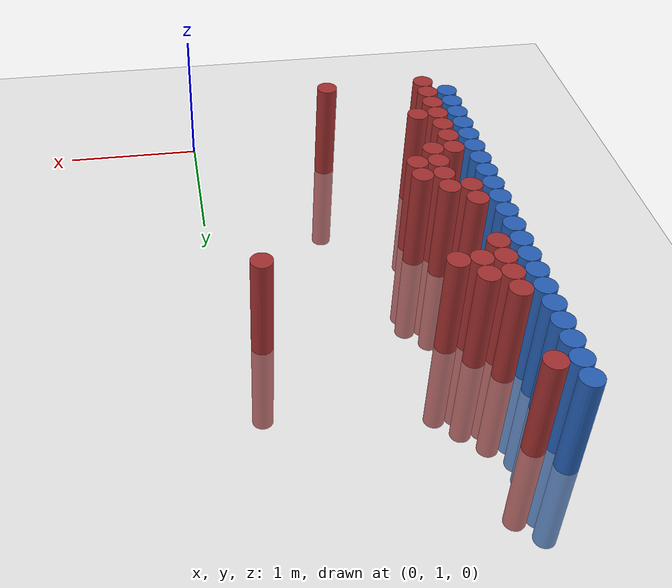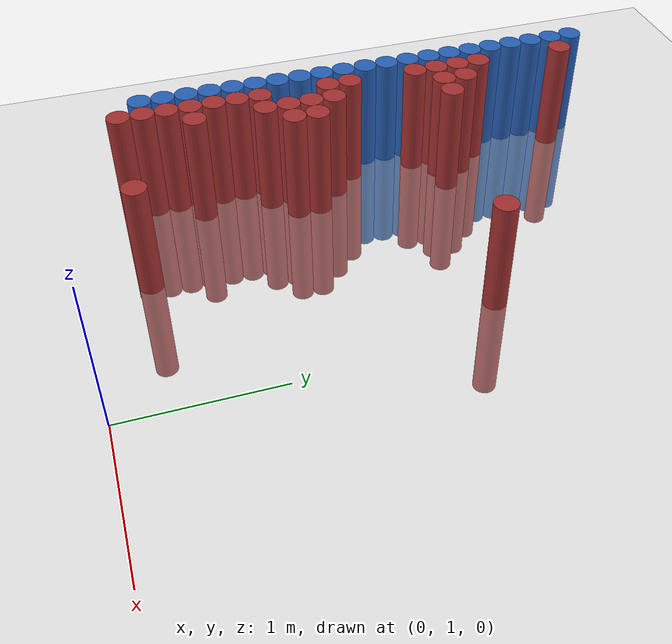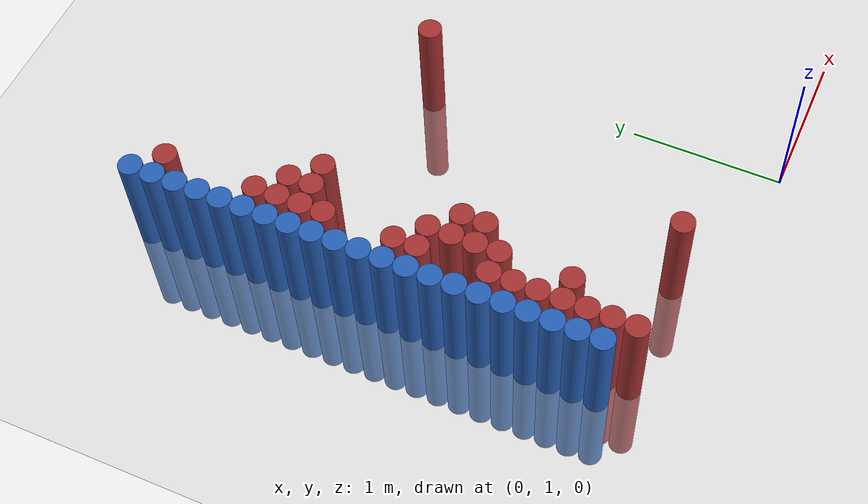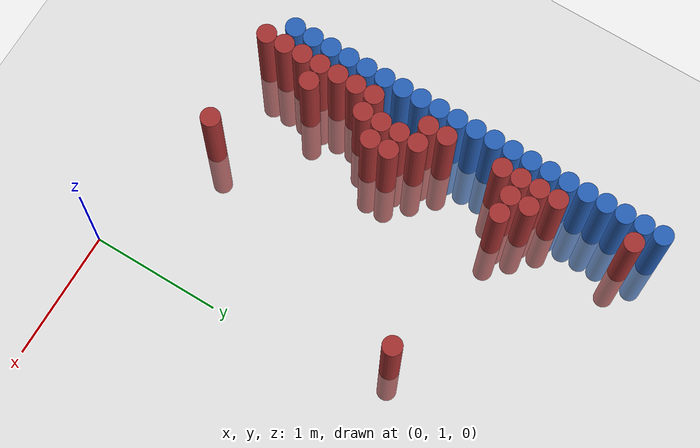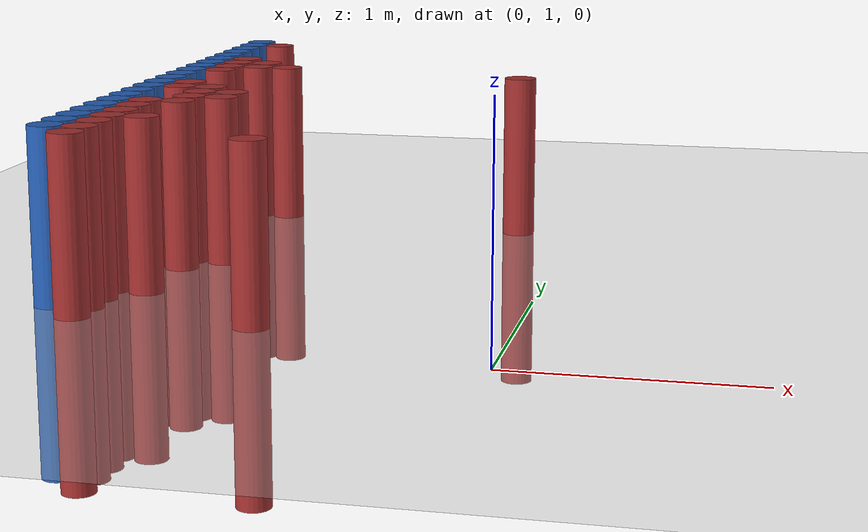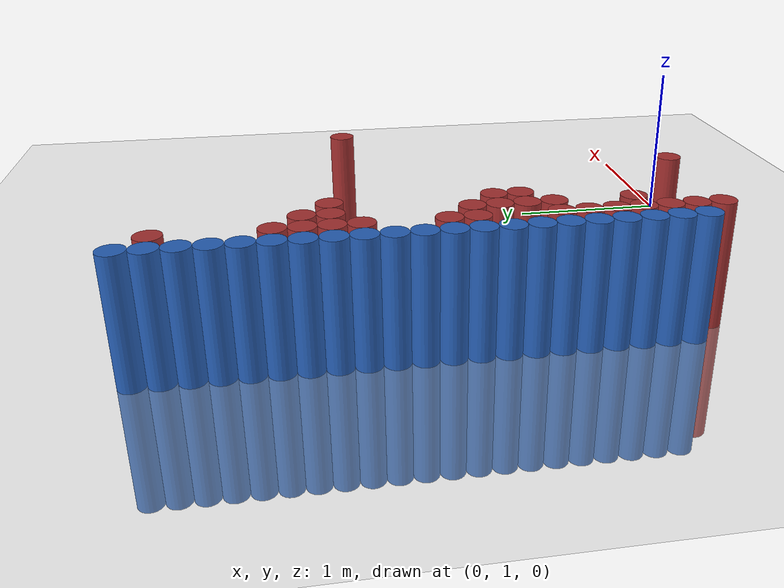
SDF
<sdf version="1.6">
 <world name="default">
  <model name="ground_plane">
   <static>1</static>
   <link name="link">
    <collision name="collision">
     <geometry><plane><normal>0 0 1</normal><size>100 100</size></plane></geometry>
     <surface><friction><ode><mu>100</mu><mu2>50</mu2></ode></friction></surface>
    </collision>
    <visual name="visual">
     <cast_shadows>0</cast_shadows>
     <geometry><plane><normal>0 0 1</normal><size>100 100</size></plane></geometry>
     <material>
      <script><uri>file://media/materials/scripts/gazebo.material</uri><name>Gazebo/Grey</name></script>
     </material>
    </visual>
   </link>
  </model>
  <model name="unit_cylinder_105">
   <static>1</static>
   <pose>-1.925000 1.525000 0.000000 0.000000 0.000000 0.000000</pose>
   <link name="link">
    <inertial>
     <mass>1</mass>
     <inertia><ixx>0.145833</ixx><ixy>0</ixy><ixz>0</ixz><iyy>0.145833</iyy><iyz>0</iyz><izz>0.125</izz></inertia>
    </inertial>
    <collision name="collision">
     <geometry><cylinder><radius>0.075000</radius><length>1.5</length></cylinder></geometry>
    </collision>
    <visual name="visual">
     <geometry><cylinder><radius>0.075000</radius><length>1.5</length></cylinder></geometry>
     <material>
      <ambient>0.152000 0.379000 0.720000 1</ambient>
      <diffuse>0.152000 0.379000 0.720000 1</diffuse>
     </material>
     <material>
      <script><name>Gazebo/Grey</name><uri>file://media/materials/scripts/gazebo.material</uri></script>
     </material>
    </visual>
   </link>
  </model>
  <model name="unit_cylinder_106">
   <static>1</static>
   <pose>-1.925000 1.675000 0.000000 0.000000 0.000000 0.000000</pose>
   <link name="link">
    <inertial>
     <mass>1</mass>
     <inertia><ixx>0.145833</ixx><ixy>0</ixy><ixz>0</ixz><iyy>0.145833</iyy><iyz>0</iyz><izz>0.125</izz></inertia>
    </inertial>
    <collision name="collision">
     <geometry><cylinder><radius>0.075000</radius><length>1.5</length></cylinder></geometry>
    </collision>
    <visual name="visual">
     <geometry><cylinder><radius>0.075000</radius><length>1.5</length></cylinder></geometry>
     <material>
      <ambient>0.152000 0.379000 0.720000 1</ambient>
      <diffuse>0.152000 0.379000 0.720000 1</diffuse>
     </material>
     <material>
      <script><name>Gazebo/Grey</name><uri>file://media/materials/scripts/gazebo.material</uri></script>
     </material>
    </visual>
   </link>
  </model>
  <model name="unit_cylinder_107">
   <static>1</static>
   <pose>-1.925000 1.825000 0.000000 0.000000 0.000000 0.000000</pose>
   <link name="link">
    <inertial>
     <mass>1</mass>
     <inertia><ixx>0.145833</ixx><ixy>0</ixy><ixz>0</ixz><iyy>0.145833</iyy><iyz>0</iyz><izz>0.125</izz></inertia>
    </inertial>
    <collision name="collision">
     <geometry><cylinder><radius>0.075000</radius><length>1.5</length></cylinder></geometry>
    </collision>
    <visual name="visual">
     <geometry><cylinder><radius>0.075000</radius><length>1.5</length></cylinder></geometry>
     <material>
      <ambient>0.152000 0.379000 0.720000 1</ambient>
      <diffuse>0.152000 0.379000 0.720000 1</diffuse>
     </material>
     <material>
      <script><name>Gazebo/Grey</name><uri>file://media/materials/scripts/gazebo.material</uri></script>
     </material>
    </visual>
   </link>
  </model>
  <model name="unit_cylinder_108">
   <static>1</static>
   <pose>-1.925000 1.975000 0.000000 0.000000 0.000000 0.000000</pose>
   <link name="link">
    <inertial>
     <mass>1</mass>
     <inertia><ixx>0.145833</ixx><ixy>0</ixy><ixz>0</ixz><iyy>0.145833</iyy><iyz>0</iyz><izz>0.125</izz></inertia>
    </inertial>
    <collision name="collision">
     <geometry><cylinder><radius>0.075000</radius><length>1.5</length></cylinder></geometry>
    </collision>
    <visual name="visual">
     <geometry><cylinder><radius>0.075000</radius><length>1.5</length></cylinder></geometry>
     <material>
      <ambient>0.152000 0.379000 0.720000 1</ambient>
      <diffuse>0.152000 0.379000 0.720000 1</diffuse>
     </material>
     <material>
      <script><name>Gazebo/Grey</name><uri>file://media/materials/scripts/gazebo.material</uri></script>
     </material>
    </visual>
   </link>
  </model>
  <model name="unit_cylinder_109">
   <static>1</static>
   <pose>-1.925000 2.125000 0.000000 0.000000 0.000000 0.000000</pose>
   <link name="link">
    <inertial>
     <mass>1</mass>
     <inertia><ixx>0.145833</ixx><ixy>0</ixy><ixz>0</ixz><iyy>0.145833</iyy><iyz>0</iyz><izz>0.125</izz></inertia>
    </inertial>
    <collision name="collision">
     <geometry><cylinder><radius>0.075000</radius><length>1.5</length></cylinder></geometry>
    </collision>
    <visual name="visual">
     <geometry><cylinder><radius>0.075000</radius><length>1.5</length></cylinder></geometry>
     <material>
      <ambient>0.152000 0.379000 0.720000 1</ambient>
      <diffuse>0.152000 0.379000 0.720000 1</diffuse>
     </material>
     <material>
      <script><name>Gazebo/Grey</name><uri>file://media/materials/scripts/gazebo.material</uri></script>
     </material>
    </visual>
   </link>
  </model>
  <model name="unit_cylinder_110">
   <static>1</static>
   <pose>-1.925000 2.275000 0.000000 0.000000 0.000000 0.000000</pose>
   <link name="link">
    <inertial>
     <mass>1</mass>
     <inertia><ixx>0.145833</ixx><ixy>0</ixy><ixz>0</ixz><iyy>0.145833</iyy><iyz>0</iyz><izz>0.125</izz></inertia>
    </inertial>
    <collision name="collision">
     <geometry><cylinder><radius>0.075000</radius><length>1.5</length></cylinder></geometry>
    </collision>
    <visual name="visual">
     <geometry><cylinder><radius>0.075000</radius><length>1.5</length></cylinder></geometry>
     <material>
      <ambient>0.152000 0.379000 0.720000 1</ambient>
      <diffuse>0.152000 0.379000 0.720000 1</diffuse>
     </material>
     <material>
      <script><name>Gazebo/Grey</name><uri>file://media/materials/scripts/gazebo.material</uri></script>
     </material>
    </visual>
   </link>
  </model>
  <model name="unit_cylinder_111">
   <static>1</static>
   <pose>-1.925000 2.425000 0.000000 0.000000 0.000000 0.000000</pose>
   <link name="link">
    <inertial>
     <mass>1</mass>
     <inertia><ixx>0.145833</ixx><ixy>0</ixy><ixz>0</ixz><iyy>0.145833</iyy><iyz>0</iyz><izz>0.125</izz></inertia>
    </inertial>
    <collision name="collision">
     <geometry><cylinder><radius>0.075000</radius><length>1.5</length></cylinder></geometry>
    </collision>
    <visual name="visual">
     <geometry><cylinder><radius>0.075000</radius><length>1.5</length></cylinder></geometry>
     <material>
      <ambient>0.152000 0.379000 0.720000 1</ambient>
      <diffuse>0.152000 0.379000 0.720000 1</diffuse>
     </material>
     <material>
      <script><name>Gazebo/Grey</name><uri>file://media/materials/scripts/gazebo.material</uri></script>
     </material>
    </visual>
   </link>
  </model>
  <model name="unit_cylinder_112">
   <static>1</static>
   <pose>-1.925000 2.575000 0.000000 0.000000 0.000000 0.000000</pose>
   <link name="link">
    <inertial>
     <mass>1</mass>
     <inertia><ixx>0.145833</ixx><ixy>0</ixy><ixz>0</ixz><iyy>0.145833</iyy><iyz>0</iyz><izz>0.125</izz></inertia>
    </inertial>
    <collision name="collision">
     <geometry><cylinder><radius>0.075000</radius><length>1.5</length></cylinder></geometry>
    </collision>
    <visual name="visual">
     <geometry><cylinder><radius>0.075000</radius><length>1.5</length></cylinder></geometry>
     <material>
      <ambient>0.152000 0.379000 0.720000 1</ambient>
      <diffuse>0.152000 0.379000 0.720000 1</diffuse>
     </material>
     <material>
      <script><name>Gazebo/Grey</name><uri>file://media/materials/scripts/gazebo.material</uri></script>
     </material>
    </visual>
   </link>
  </model>
  <model name="unit_cylinder_113">
   <static>1</static>
   <pose>-1.925000 2.725000 0.000000 0.000000 0.000000 0.000000</pose>
   <link name="link">
    <inertial>
     <mass>1</mass>
     <inertia><ixx>0.145833</ixx><ixy>0</ixy><ixz>0</ixz><iyy>0.145833</iyy><iyz>0</iyz><izz>0.125</izz></inertia>
    </inertial>
    <collision name="collision">
     <geometry><cylinder><radius>0.075000</radius><length>1.5</length></cylinder></geometry>
    </collision>
    <visual name="visual">
     <geometry><cylinder><radius>0.075000</radius><length>1.5</length></cylinder></geometry>
     <material>
      <ambient>0.152000 0.379000 0.720000 1</ambient>
      <diffuse>0.152000 0.379000 0.720000 1</diffuse>
     </material>
     <material>
      <script><name>Gazebo/Grey</name><uri>file://media/materials/scripts/gazebo.material</uri></script>
     </material>
    </visual>
   </link>
  </model>
  <model name="unit_cylinder_114">
   <static>1</static>
   <pose>-1.925000 2.875000 0.000000 0.000000 0.000000 0.000000</pose>
   <link name="link">
    <inertial>
     <mass>1</mass>
     <inertia><ixx>0.145833</ixx><ixy>0</ixy><ixz>0</ixz><iyy>0.145833</iyy><iyz>0</iyz><izz>0.125</izz></inertia>
    </inertial>
    <collision name="collision">
     <geometry><cylinder><radius>0.075000</radius><length>1.5</length></cylinder></geometry>
    </collision>
    <visual name="visual">
     <geometry><cylinder><radius>0.075000</radius><length>1.5</length></cylinder></geometry>
     <material>
      <ambient>0.152000 0.379000 0.720000 1</ambient>
      <diffuse>0.152000 0.379000 0.720000 1</diffuse>
     </material>
     <material>
      <script><name>Gazebo/Grey</name><uri>file://media/materials/scripts/gazebo.material</uri></script>
     </material>
    </visual>
   </link>
  </model>
  <model name="unit_cylinder_115">
   <static>1</static>
   <pose>-1.925000 3.025000 0.000000 0.000000 0.000000 0.000000</pose>
   <link name="link">
    <inertial>
     <mass>1</mass>
     <inertia><ixx>0.145833</ixx><ixy>0</ixy><ixz>0</ixz><iyy>0.145833</iyy><iyz>0</iyz><izz>0.125</izz></inertia>
    </inertial>
    <collision name="collision">
     <geometry><cylinder><radius>0.075000</radius><length>1.5</length></cylinder></geometry>
    </collision>
    <visual name="visual">
     <geometry><cylinder><radius>0.075000</radius><length>1.5</length></cylinder></geometry>
     <material>
      <ambient>0.152000 0.379000 0.720000 1</ambient>
      <diffuse>0.152000 0.379000 0.720000 1</diffuse>
     </material>
     <material>
      <script><name>Gazebo/Grey</name><uri>file://media/materials/scripts/gazebo.material</uri></script>
     </material>
    </visual>
   </link>
  </model>
  <model name="unit_cylinder_116">
   <static>1</static>
   <pose>-1.925000 3.175000 0.000000 0.000000 0.000000 0.000000</pose>
   <link name="link">
    <inertial>
     <mass>1</mass>
     <inertia><ixx>0.145833</ixx><ixy>0</ixy><ixz>0</ixz><iyy>0.145833</iyy><iyz>0</iyz><izz>0.125</izz></inertia>
    </inertial>
    <collision name="collision">
     <geometry><cylinder><radius>0.075000</radius><length>1.5</length></cylinder></geometry>
    </collision>
    <visual name="visual">
     <geometry><cylinder><radius>0.075000</radius><length>1.5</length></cylinder></geometry>
     <material>
      <ambient>0.152000 0.379000 0.720000 1</ambient>
      <diffuse>0.152000 0.379000 0.720000 1</diffuse>
     </material>
     <material>
      <script><name>Gazebo/Grey</name><uri>file://media/materials/scripts/gazebo.material</uri></script>
     </material>
    </visual>
   </link>
  </model>
  <model name="unit_cylinder_117">
   <static>1</static>
   <pose>-1.925000 3.325000 0.000000 0.000000 0.000000 0.000000</pose>
   <link name="link">
    <inertial>
     <mass>1</mass>
     <inertia><ixx>0.145833</ixx><ixy>0</ixy><ixz>0</ixz><iyy>0.145833</iyy><iyz>0</iyz><izz>0.125</izz></inertia>
    </inertial>
    <collision name="collision">
     <geometry><cylinder><radius>0.075000</radius><length>1.5</length></cylinder></geometry>
    </collision>
    <visual name="visual">
     <geometry><cylinder><radius>0.075000</radius><length>1.5</length></cylinder></geometry>
     <material>
      <ambient>0.152000 0.379000 0.720000 1</ambient>
      <diffuse>0.152000 0.379000 0.720000 1</diffuse>
     </material>
     <material>
      <script><name>Gazebo/Grey</name><uri>file://media/materials/scripts/gazebo.material</uri></script>
     </material>
    </visual>
   </link>
  </model>
  <model name="unit_cylinder_118">
   <static>1</static>
   <pose>-1.925000 3.475000 0.000000 0.000000 0.000000 0.000000</pose>
   <link name="link">
    <inertial>
     <mass>1</mass>
     <inertia><ixx>0.145833</ixx><ixy>0</ixy><ixz>0</ixz><iyy>0.145833</iyy><iyz>0</iyz><izz>0.125</izz></inertia>
    </inertial>
    <collision name="collision">
     <geometry><cylinder><radius>0.075000</radius><length>1.5</length></cylinder></geometry>
    </collision>
    <visual name="visual">
     <geometry><cylinder><radius>0.075000</radius><length>1.5</length></cylinder></geometry>
     <material>
      <ambient>0.152000 0.379000 0.720000 1</ambient>
      <diffuse>0.152000 0.379000 0.720000 1</diffuse>
     </material>
     <material>
      <script><name>Gazebo/Grey</name><uri>file://media/materials/scripts/gazebo.material</uri></script>
     </material>
    </visual>
   </link>
  </model>
  <model name="unit_cylinder_119">
   <static>1</static>
   <pose>-1.925000 3.625000 0.000000 0.000000 0.000000 0.000000</pose>
   <link name="link">
    <inertial>
     <mass>1</mass>
     <inertia><ixx>0.145833</ixx><ixy>0</ixy><ixz>0</ixz><iyy>0.145833</iyy><iyz>0</iyz><izz>0.125</izz></inertia>
    </inertial>
    <collision name="collision">
     <geometry><cylinder><radius>0.075000</radius><length>1.5</length></cylinder></geometry>
    </collision>
    <visual name="visual">
     <geometry><cylinder><radius>0.075000</radius><length>1.5</length></cylinder></geometry>
     <material>
      <ambient>0.152000 0.379000 0.720000 1</ambient>
      <diffuse>0.152000 0.379000 0.720000 1</diffuse>
     </material>
     <material>
      <script><name>Gazebo/Grey</name><uri>file://media/materials/scripts/gazebo.material</uri></script>
     </material>
    </visual>
   </link>
  </model>
  <model name="unit_cylinder_120">
   <static>1</static>
   <pose>-1.925000 3.775000 0.000000 0.000000 0.000000 0.000000</pose>
   <link name="link">
    <inertial>
     <mass>1</mass>
     <inertia><ixx>0.145833</ixx><ixy>0</ixy><ixz>0</ixz><iyy>0.145833</iyy><iyz>0</iyz><izz>0.125</izz></inertia>
    </inertial>
    <collision name="collision">
     <geometry><cylinder><radius>0.075000</radius><length>1.5</length></cylinder></geometry>
    </collision>
    <visual name="visual">
     <geometry><cylinder><radius>0.075000</radius><length>1.5</length></cylinder></geometry>
     <material>
      <ambient>0.152000 0.379000 0.720000 1</ambient>
      <diffuse>0.152000 0.379000 0.720000 1</diffuse>
     </material>
     <material>
      <script><name>Gazebo/Grey</name><uri>file://media/materials/scripts/gazebo.material</uri></script>
     </material>
    </visual>
   </link>
  </model>
  <model name="unit_cylinder_121">
   <static>1</static>
   <pose>-1.925000 3.925000 0.000000 0.000000 0.000000 0.000000</pose>
   <link name="link">
    <inertial>
     <mass>1</mass>
     <inertia><ixx>0.145833</ixx><ixy>0</ixy><ixz>0</ixz><iyy>0.145833</iyy><iyz>0</iyz><izz>0.125</izz></inertia>
    </inertial>
    <collision name="collision">
     <geometry><cylinder><radius>0.075000</radius><length>1.5</length></cylinder></geometry>
    </collision>
    <visual name="visual">
     <geometry><cylinder><radius>0.075000</radius><length>1.5</length></cylinder></geometry>
     <material>
      <ambient>0.152000 0.379000 0.720000 1</ambient>
      <diffuse>0.152000 0.379000 0.720000 1</diffuse>
     </material>
     <material>
      <script><name>Gazebo/Grey</name><uri>file://media/materials/scripts/gazebo.material</uri></script>
     </material>
    </visual>
   </link>
  </model>
  <model name="unit_cylinder_122">
   <static>1</static>
   <pose>-1.925000 4.075000 0.000000 0.000000 0.000000 0.000000</pose>
   <link name="link">
    <inertial>
     <mass>1</mass>
     <inertia><ixx>0.145833</ixx><ixy>0</ixy><ixz>0</ixz><iyy>0.145833</iyy><iyz>0</iyz><izz>0.125</izz></inertia>
    </inertial>
    <collision name="collision">
     <geometry><cylinder><radius>0.075000</radius><length>1.5</length></cylinder></geometry>
    </collision>
    <visual name="visual">
     <geometry><cylinder><radius>0.075000</radius><length>1.5</length></cylinder></geometry>
     <material>
      <ambient>0.152000 0.379000 0.720000 1</ambient>
      <diffuse>0.152000 0.379000 0.720000 1</diffuse>
     </material>
     <material>
      <script><name>Gazebo/Grey</name><uri>file://media/materials/scripts/gazebo.material</uri></script>
     </material>
    </visual>
   </link>
  </model>
  <model name="unit_cylinder_123">
   <static>1</static>
   <pose>-1.925000 4.225000 0.000000 0.000000 0.000000 0.000000</pose>
   <link name="link">
    <inertial>
     <mass>1</mass>
     <inertia><ixx>0.145833</ixx><ixy>0</ixy><ixz>0</ixz><iyy>0.145833</iyy><iyz>0</iyz><izz>0.125</izz></inertia>
    </inertial>
    <collision name="collision">
     <geometry><cylinder><radius>0.075000</radius><length>1.5</length></cylinder></geometry>
    </collision>
    <visual name="visual">
     <geometry><cylinder><radius>0.075000</radius><length>1.5</length></cylinder></geometry>
     <material>
      <ambient>0.152000 0.379000 0.720000 1</ambient>
      <diffuse>0.152000 0.379000 0.720000 1</diffuse>
     </material>
     <material>
      <script><name>Gazebo/Grey</name><uri>file://media/materials/scripts/gazebo.material</uri></script>
     </material>
    </visual>
   </link>
  </model>
  <model name="unit_cylinder_124">
   <static>1</static>
   <pose>-1.925000 4.375000 0.000000 0.000000 0.000000 0.000000</pose>
   <link name="link">
    <inertial>
     <mass>1</mass>
     <inertia><ixx>0.145833</ixx><ixy>0</ixy><ixz>0</ixz><iyy>0.145833</iyy><iyz>0</iyz><izz>0.125</izz></inertia>
    </inertial>
    <collision name="collision">
     <geometry><cylinder><radius>0.075000</radius><length>1.5</length></cylinder></geometry>
    </collision>
    <visual name="visual">
     <geometry><cylinder><radius>0.075000</radius><length>1.5</length></cylinder></geometry>
     <material>
      <ambient>0.152000 0.379000 0.720000 1</ambient>
      <diffuse>0.152000 0.379000 0.720000 1</diffuse>
     </material>
     <material>
      <script><name>Gazebo/Grey</name><uri>file://media/materials/scripts/gazebo.material</uri></script>
     </material>
    </visual>
   </link>
  </model>
  <model name="unit_cylinder_125">
   <static>1</static>
   <pose>-1.925000 4.525000 0.000000 0.000000 0.000000 0.000000</pose>
   <link name="link">
    <inertial>
     <mass>1</mass>
     <inertia><ixx>0.145833</ixx><ixy>0</ixy><ixz>0</ixz><iyy>0.145833</iyy><iyz>0</iyz><izz>0.125</izz></inertia>
    </inertial>
    <collision name="collision">
     <geometry><cylinder><radius>0.075000</radius><length>1.5</length></cylinder></geometry>
    </collision>
    <visual name="visual">
     <geometry><cylinder><radius>0.075000</radius><length>1.5</length></cylinder></geometry>
     <material>
      <ambient>0.152000 0.379000 0.720000 1</ambient>
      <diffuse>0.152000 0.379000 0.720000 1</diffuse>
     </material>
     <material>
      <script><name>Gazebo/Grey</name><uri>file://media/materials/scripts/gazebo.material</uri></script>
     </material>
    </visual>
   </link>
  </model>
  <model name="unit_cylinder_131">
   <static>1</static>
   <pose>-1.775000 1.375000 0.000000 0.000000 0.000000 0.000000</pose>
   <link name="link">
    <inertial>
     <mass>1</mass>
     <inertia><ixx>0.145833</ixx><ixy>0</ixy><ixz>0</ixz><iyy>0.145833</iyy><iyz>0</iyz><izz>0.125</izz></inertia>
    </inertial>
    <collision name="collision">
     <geometry><cylinder><radius>0.075000</radius><length>1.5</length></cylinder></geometry>
    </collision>
    <visual name="visual">
     <geometry><cylinder><radius>0.075000</radius><length>1.5</length></cylinder></geometry>
     <material>
      <ambient>0.648000 0.192000 0.192000 1</ambient>
      <diffuse>0.648000 0.192000 0.192000 1</diffuse>
     </material>
     <material>
      <script><name>Gazebo/Grey</name><uri>file://media/materials/scripts/gazebo.material</uri></script>
     </material>
    </visual>
   </link>
  </model>
  <model name="unit_cylinder_132">
   <static>1</static>
   <pose>-1.775000 1.525000 0.000000 0.000000 0.000000 0.000000</pose>
   <link name="link">
    <inertial>
     <mass>1</mass>
     <inertia><ixx>0.145833</ixx><ixy>0</ixy><ixz>0</ixz><iyy>0.145833</iyy><iyz>0</iyz><izz>0.125</izz></inertia>
    </inertial>
    <collision name="collision">
     <geometry><cylinder><radius>0.075000</radius><length>1.5</length></cylinder></geometry>
    </collision>
    <visual name="visual">
     <geometry><cylinder><radius>0.075000</radius><length>1.5</length></cylinder></geometry>
     <material>
      <ambient>0.648000 0.192000 0.192000 1</ambient>
      <diffuse>0.648000 0.192000 0.192000 1</diffuse>
     </material>
     <material>
      <script><name>Gazebo/Grey</name><uri>file://media/materials/scripts/gazebo.material</uri></script>
     </material>
    </visual>
   </link>
  </model>
  <model name="unit_cylinder_133">
   <static>1</static>
   <pose>-1.775000 1.675000 0.000000 0.000000 0.000000 0.000000</pose>
   <link name="link">
    <inertial>
     <mass>1</mass>
     <inertia><ixx>0.145833</ixx><ixy>0</ixy><ixz>0</ixz><iyy>0.145833</iyy><iyz>0</iyz><izz>0.125</izz></inertia>
    </inertial>
    <collision name="collision">
     <geometry><cylinder><radius>0.075000</radius><length>1.5</length></cylinder></geometry>
    </collision>
    <visual name="visual">
     <geometry><cylinder><radius>0.075000</radius><length>1.5</length></cylinder></geometry>
     <material>
      <ambient>0.648000 0.192000 0.192000 1</ambient>
      <diffuse>0.648000 0.192000 0.192000 1</diffuse>
     </material>
     <material>
      <script><name>Gazebo/Grey</name><uri>file://media/materials/scripts/gazebo.material</uri></script>
     </material>
    </visual>
   </link>
  </model>
  <model name="unit_cylinder_134">
   <static>1</static>
   <pose>-1.775000 1.825000 0.000000 0.000000 0.000000 0.000000</pose>
   <link name="link">
    <inertial>
     <mass>1</mass>
     <inertia><ixx>0.145833</ixx><ixy>0</ixy><ixz>0</ixz><iyy>0.145833</iyy><iyz>0</iyz><izz>0.125</izz></inertia>
    </inertial>
    <collision name="collision">
     <geometry><cylinder><radius>0.075000</radius><length>1.5</length></cylinder></geometry>
    </collision>
    <visual name="visual">
     <geometry><cylinder><radius>0.075000</radius><length>1.5</length></cylinder></geometry>
     <material>
      <ambient>0.648000 0.192000 0.192000 1</ambient>
      <diffuse>0.648000 0.192000 0.192000 1</diffuse>
     </material>
     <material>
      <script><name>Gazebo/Grey</name><uri>file://media/materials/scripts/gazebo.material</uri></script>
     </material>
    </visual>
   </link>
  </model>
  <model name="unit_cylinder_135">
   <static>1</static>
   <pose>-1.775000 1.975000 0.000000 0.000000 0.000000 0.000000</pose>
   <link name="link">
    <inertial>
     <mass>1</mass>
     <inertia><ixx>0.145833</ixx><ixy>0</ixy><ixz>0</ixz><iyy>0.145833</iyy><iyz>0</iyz><izz>0.125</izz></inertia>
    </inertial>
    <collision name="collision">
     <geometry><cylinder><radius>0.075000</radius><length>1.5</length></cylinder></geometry>
    </collision>
    <visual name="visual">
     <geometry><cylinder><radius>0.075000</radius><length>1.5</length></cylinder></geometry>
     <material>
      <ambient>0.648000 0.192000 0.192000 1</ambient>
      <diffuse>0.648000 0.192000 0.192000 1</diffuse>
     </material>
     <material>
      <script><name>Gazebo/Grey</name><uri>file://media/materials/scripts/gazebo.material</uri></script>
     </material>
    </visual>
   </link>
  </model>
  <model name="unit_cylinder_136">
   <static>1</static>
   <pose>-1.775000 2.125000 0.000000 0.000000 0.000000 0.000000</pose>
   <link name="link">
    <inertial>
     <mass>1</mass>
     <inertia><ixx>0.145833</ixx><ixy>0</ixy><ixz>0</ixz><iyy>0.145833</iyy><iyz>0</iyz><izz>0.125</izz></inertia>
    </inertial>
    <collision name="collision">
     <geometry><cylinder><radius>0.075000</radius><length>1.5</length></cylinder></geometry>
    </collision>
    <visual name="visual">
     <geometry><cylinder><radius>0.075000</radius><length>1.5</length></cylinder></geometry>
     <material>
      <ambient>0.648000 0.192000 0.192000 1</ambient>
      <diffuse>0.648000 0.192000 0.192000 1</diffuse>
     </material>
     <material>
      <script><name>Gazebo/Grey</name><uri>file://media/materials/scripts/gazebo.material</uri></script>
     </material>
    </visual>
   </link>
  </model>
  <model name="unit_cylinder_137">
   <static>1</static>
   <pose>-1.775000 2.275000 0.000000 0.000000 0.000000 0.000000</pose>
   <link name="link">
    <inertial>
     <mass>1</mass>
     <inertia><ixx>0.145833</ixx><ixy>0</ixy><ixz>0</ixz><iyy>0.145833</iyy><iyz>0</iyz><izz>0.125</izz></inertia>
    </inertial>
    <collision name="collision">
     <geometry><cylinder><radius>0.075000</radius><length>1.5</length></cylinder></geometry>
    </collision>
    <visual name="visual">
     <geometry><cylinder><radius>0.075000</radius><length>1.5</length></cylinder></geometry>
     <material>
      <ambient>0.648000 0.192000 0.192000 1</ambient>
      <diffuse>0.648000 0.192000 0.192000 1</diffuse>
     </material>
     <material>
      <script><name>Gazebo/Grey</name><uri>file://media/materials/scripts/gazebo.material</uri></script>
     </material>
    </visual>
   </link>
  </model>
  <model name="unit_cylinder_138">
   <static>1</static>
   <pose>-1.775000 2.725000 0.000000 0.000000 0.000000 0.000000</pose>
   <link name="link">
    <inertial>
     <mass>1</mass>
     <inertia><ixx>0.145833</ixx><ixy>0</ixy><ixz>0</ixz><iyy>0.145833</iyy><iyz>0</iyz><izz>0.125</izz></inertia>
    </inertial>
    <collision name="collision">
     <geometry><cylinder><radius>0.075000</radius><length>1.5</length></cylinder></geometry>
    </collision>
    <visual name="visual">
     <geometry><cylinder><radius>0.075000</radius><length>1.5</length></cylinder></geometry>
     <material>
      <ambient>0.648000 0.192000 0.192000 1</ambient>
      <diffuse>0.648000 0.192000 0.192000 1</diffuse>
     </material>
     <material>
      <script><name>Gazebo/Grey</name><uri>file://media/materials/scripts/gazebo.material</uri></script>
     </material>
    </visual>
   </link>
  </model>
  <model name="unit_cylinder_139">
   <static>1</static>
   <pose>-1.775000 2.875000 0.000000 0.000000 0.000000 0.000000</pose>
   <link name="link">
    <inertial>
     <mass>1</mass>
     <inertia><ixx>0.145833</ixx><ixy>0</ixy><ixz>0</ixz><iyy>0.145833</iyy><iyz>0</iyz><izz>0.125</izz></inertia>
    </inertial>
    <collision name="collision">
     <geometry><cylinder><radius>0.075000</radius><length>1.5</length></cylinder></geometry>
    </collision>
    <visual name="visual">
     <geometry><cylinder><radius>0.075000</radius><length>1.5</length></cylinder></geometry>
     <material>
      <ambient>0.648000 0.192000 0.192000 1</ambient>
      <diffuse>0.648000 0.192000 0.192000 1</diffuse>
     </material>
     <material>
      <script><name>Gazebo/Grey</name><uri>file://media/materials/scripts/gazebo.material</uri></script>
     </material>
    </visual>
   </link>
  </model>
  <model name="unit_cylinder_140">
   <static>1</static>
   <pose>-1.775000 3.325000 0.000000 0.000000 0.000000 0.000000</pose>
   <link name="link">
    <inertial>
     <mass>1</mass>
     <inertia><ixx>0.145833</ixx><ixy>0</ixy><ixz>0</ixz><iyy>0.145833</iyy><iyz>0</iyz><izz>0.125</izz></inertia>
    </inertial>
    <collision name="collision">
     <geometry><cylinder><radius>0.075000</radius><length>1.5</length></cylinder></geometry>
    </collision>
    <visual name="visual">
     <geometry><cylinder><radius>0.075000</radius><length>1.5</length></cylinder></geometry>
     <material>
      <ambient>0.648000 0.192000 0.192000 1</ambient>
      <diffuse>0.648000 0.192000 0.192000 1</diffuse>
     </material>
     <material>
      <script><name>Gazebo/Grey</name><uri>file://media/materials/scripts/gazebo.material</uri></script>
     </material>
    </visual>
   </link>
  </model>
  <model name="unit_cylinder_141">
   <static>1</static>
   <pose>-1.775000 3.475000 0.000000 0.000000 0.000000 0.000000</pose>
   <link name="link">
    <inertial>
     <mass>1</mass>
     <inertia><ixx>0.145833</ixx><ixy>0</ixy><ixz>0</ixz><iyy>0.145833</iyy><iyz>0</iyz><izz>0.125</izz></inertia>
    </inertial>
    <collision name="collision">
     <geometry><cylinder><radius>0.075000</radius><length>1.5</length></cylinder></geometry>
    </collision>
    <visual name="visual">
     <geometry><cylinder><radius>0.075000</radius><length>1.5</length></cylinder></geometry>
     <material>
      <ambient>0.648000 0.192000 0.192000 1</ambient>
      <diffuse>0.648000 0.192000 0.192000 1</diffuse>
     </material>
     <material>
      <script><name>Gazebo/Grey</name><uri>file://media/materials/scripts/gazebo.material</uri></script>
     </material>
    </visual>
   </link>
  </model>
  <model name="unit_cylinder_142">
   <static>1</static>
   <pose>-1.775000 3.625000 0.000000 0.000000 0.000000 0.000000</pose>
   <link name="link">
    <inertial>
     <mass>1</mass>
     <inertia><ixx>0.145833</ixx><ixy>0</ixy><ixz>0</ixz><iyy>0.145833</iyy><iyz>0</iyz><izz>0.125</izz></inertia>
    </inertial>
    <collision name="collision">
     <geometry><cylinder><radius>0.075000</radius><length>1.5</length></cylinder></geometry>
    </collision>
    <visual name="visual">
     <geometry><cylinder><radius>0.075000</radius><length>1.5</length></cylinder></geometry>
     <material>
      <ambient>0.648000 0.192000 0.192000 1</ambient>
      <diffuse>0.648000 0.192000 0.192000 1</diffuse>
     </material>
     <material>
      <script><name>Gazebo/Grey</name><uri>file://media/materials/scripts/gazebo.material</uri></script>
     </material>
    </visual>
   </link>
  </model>
  <model name="unit_cylinder_143">
   <static>1</static>
   <pose>-1.775000 3.775000 0.000000 0.000000 0.000000 0.000000</pose>
   <link name="link">
    <inertial>
     <mass>1</mass>
     <inertia><ixx>0.145833</ixx><ixy>0</ixy><ixz>0</ixz><iyy>0.145833</iyy><iyz>0</iyz><izz>0.125</izz></inertia>
    </inertial>
    <collision name="collision">
     <geometry><cylinder><radius>0.075000</radius><length>1.5</length></cylinder></geometry>
    </collision>
    <visual name="visual">
     <geometry><cylinder><radius>0.075000</radius><length>1.5</length></cylinder></geometry>
     <material>
      <ambient>0.648000 0.192000 0.192000 1</ambient>
      <diffuse>0.648000 0.192000 0.192000 1</diffuse>
     </material>
     <material>
      <script><name>Gazebo/Grey</name><uri>file://media/materials/scripts/gazebo.material</uri></script>
     </material>
    </visual>
   </link>
  </model>
  <model name="unit_cylinder_144">
   <static>1</static>
   <pose>-1.775000 4.375000 0.000000 0.000000 0.000000 0.000000</pose>
   <link name="link">
    <inertial>
     <mass>1</mass>
     <inertia><ixx>0.145833</ixx><ixy>0</ixy><ixz>0</ixz><iyy>0.145833</iyy><iyz>0</iyz><izz>0.125</izz></inertia>
    </inertial>
    <collision name="collision">
     <geometry><cylinder><radius>0.075000</radius><length>1.5</length></cylinder></geometry>
    </collision>
    <visual name="visual">
     <geometry><cylinder><radius>0.075000</radius><length>1.5</length></cylinder></geometry>
     <material>
      <ambient>0.648000 0.192000 0.192000 1</ambient>
      <diffuse>0.648000 0.192000 0.192000 1</diffuse>
     </material>
     <material>
      <script><name>Gazebo/Grey</name><uri>file://media/materials/scripts/gazebo.material</uri></script>
     </material>
    </visual>
   </link>
  </model>
  <model name="unit_cylinder_148">
   <static>1</static>
   <pose>-1.625000 1.825000 0.000000 0.000000 0.000000 0.000000</pose>
   <link name="link">
    <inertial>
     <mass>1</mass>
     <inertia><ixx>0.145833</ixx><ixy>0</ixy><ixz>0</ixz><iyy>0.145833</iyy><iyz>0</iyz><izz>0.125</izz></inertia>
    </inertial>
    <collision name="collision">
     <geometry><cylinder><radius>0.075000</radius><length>1.5</length></cylinder></geometry>
    </collision>
    <visual name="visual">
     <geometry><cylinder><radius>0.075000</radius><length>1.5</length></cylinder></geometry>
     <material>
      <ambient>0.648000 0.192000 0.192000 1</ambient>
      <diffuse>0.648000 0.192000 0.192000 1</diffuse>
     </material>
     <material>
      <script><name>Gazebo/Grey</name><uri>file://media/materials/scripts/gazebo.material</uri></script>
     </material>
    </visual>
   </link>
  </model>
  <model name="unit_cylinder_149">
   <static>1</static>
   <pose>-1.625000 2.275000 0.000000 0.000000 0.000000 0.000000</pose>
   <link name="link">
    <inertial>
     <mass>1</mass>
     <inertia><ixx>0.145833</ixx><ixy>0</ixy><ixz>0</ixz><iyy>0.145833</iyy><iyz>0</iyz><izz>0.125</izz></inertia>
    </inertial>
    <collision name="collision">
     <geometry><cylinder><radius>0.075000</radius><length>1.5</length></cylinder></geometry>
    </collision>
    <visual name="visual">
     <geometry><cylinder><radius>0.075000</radius><length>1.5</length></cylinder></geometry>
     <material>
      <ambient>0.648000 0.192000 0.192000 1</ambient>
      <diffuse>0.648000 0.192000 0.192000 1</diffuse>
     </material>
     <material>
      <script><name>Gazebo/Grey</name><uri>file://media/materials/scripts/gazebo.material</uri></script>
     </material>
    </visual>
   </link>
  </model>
  <model name="unit_cylinder_150">
   <static>1</static>
   <pose>-1.625000 2.425000 0.000000 0.000000 0.000000 0.000000</pose>
   <link name="link">
    <inertial>
     <mass>1</mass>
     <inertia><ixx>0.145833</ixx><ixy>0</ixy><ixz>0</ixz><iyy>0.145833</iyy><iyz>0</iyz><izz>0.125</izz></inertia>
    </inertial>
    <collision name="collision">
     <geometry><cylinder><radius>0.075000</radius><length>1.5</length></cylinder></geometry>
    </collision>
    <visual name="visual">
     <geometry><cylinder><radius>0.075000</radius><length>1.5</length></cylinder></geometry>
     <material>
      <ambient>0.648000 0.192000 0.192000 1</ambient>
      <diffuse>0.648000 0.192000 0.192000 1</diffuse>
     </material>
     <material>
      <script><name>Gazebo/Grey</name><uri>file://media/materials/scripts/gazebo.material</uri></script>
     </material>
    </visual>
   </link>
  </model>
  <model name="unit_cylinder_151">
   <static>1</static>
   <pose>-1.625000 2.575000 0.000000 0.000000 0.000000 0.000000</pose>
   <link name="link">
    <inertial>
     <mass>1</mass>
     <inertia><ixx>0.145833</ixx><ixy>0</ixy><ixz>0</ixz><iyy>0.145833</iyy><iyz>0</iyz><izz>0.125</izz></inertia>
    </inertial>
    <collision name="collision">
     <geometry><cylinder><radius>0.075000</radius><length>1.5</length></cylinder></geometry>
    </collision>
    <visual name="visual">
     <geometry><cylinder><radius>0.075000</radius><length>1.5</length></cylinder></geometry>
     <material>
      <ambient>0.648000 0.192000 0.192000 1</ambient>
      <diffuse>0.648000 0.192000 0.192000 1</diffuse>
     </material>
     <material>
      <script><name>Gazebo/Grey</name><uri>file://media/materials/scripts/gazebo.material</uri></script>
     </material>
    </visual>
   </link>
  </model>
  <model name="unit_cylinder_152">
   <static>1</static>
   <pose>-1.625000 2.725000 0.000000 0.000000 0.000000 0.000000</pose>
   <link name="link">
    <inertial>
     <mass>1</mass>
     <inertia><ixx>0.145833</ixx><ixy>0</ixy><ixz>0</ixz><iyy>0.145833</iyy><iyz>0</iyz><izz>0.125</izz></inertia>
    </inertial>
    <collision name="collision">
     <geometry><cylinder><radius>0.075000</radius><length>1.5</length></cylinder></geometry>
    </collision>
    <visual name="visual">
     <geometry><cylinder><radius>0.075000</radius><length>1.5</length></cylinder></geometry>
     <material>
      <ambient>0.648000 0.192000 0.192000 1</ambient>
      <diffuse>0.648000 0.192000 0.192000 1</diffuse>
     </material>
     <material>
      <script><name>Gazebo/Grey</name><uri>file://media/materials/scripts/gazebo.material</uri></script>
     </material>
    </visual>
   </link>
  </model>
  <model name="unit_cylinder_153">
   <static>1</static>
   <pose>-1.625000 3.475000 0.000000 0.000000 0.000000 0.000000</pose>
   <link name="link">
    <inertial>
     <mass>1</mass>
     <inertia><ixx>0.145833</ixx><ixy>0</ixy><ixz>0</ixz><iyy>0.145833</iyy><iyz>0</iyz><izz>0.125</izz></inertia>
    </inertial>
    <collision name="collision">
     <geometry><cylinder><radius>0.075000</radius><length>1.5</length></cylinder></geometry>
    </collision>
    <visual name="visual">
     <geometry><cylinder><radius>0.075000</radius><length>1.5</length></cylinder></geometry>
     <material>
      <ambient>0.648000 0.192000 0.192000 1</ambient>
      <diffuse>0.648000 0.192000 0.192000 1</diffuse>
     </material>
     <material>
      <script><name>Gazebo/Grey</name><uri>file://media/materials/scripts/gazebo.material</uri></script>
     </material>
    </visual>
   </link>
  </model>
  <model name="unit_cylinder_154">
   <static>1</static>
   <pose>-1.625000 3.625000 0.000000 0.000000 0.000000 0.000000</pose>
   <link name="link">
    <inertial>
     <mass>1</mass>
     <inertia><ixx>0.145833</ixx><ixy>0</ixy><ixz>0</ixz><iyy>0.145833</iyy><iyz>0</iyz><izz>0.125</izz></inertia>
    </inertial>
    <collision name="collision">
     <geometry><cylinder><radius>0.075000</radius><length>1.5</length></cylinder></geometry>
    </collision>
    <visual name="visual">
     <geometry><cylinder><radius>0.075000</radius><length>1.5</length></cylinder></geometry>
     <material>
      <ambient>0.648000 0.192000 0.192000 1</ambient>
      <diffuse>0.648000 0.192000 0.192000 1</diffuse>
     </material>
     <material>
      <script><name>Gazebo/Grey</name><uri>file://media/materials/scripts/gazebo.material</uri></script>
     </material>
    </visual>
   </link>
  </model>
  <model name="unit_cylinder_160">
   <static>1</static>
   <pose>-1.475000 2.425000 0.000000 0.000000 0.000000 0.000000</pose>
   <link name="link">
    <inertial>
     <mass>1</mass>
     <inertia><ixx>0.145833</ixx><ixy>0</ixy><ixz>0</ixz><iyy>0.145833</iyy><iyz>0</iyz><izz>0.125</izz></inertia>
    </inertial>
    <collision name="collision">
     <geometry><cylinder><radius>0.075000</radius><length>1.5</length></cylinder></geometry>
    </collision>
    <visual name="visual">
     <geometry><cylinder><radius>0.075000</radius><length>1.5</length></cylinder></geometry>
     <material>
      <ambient>0.648000 0.192000 0.192000 1</ambient>
      <diffuse>0.648000 0.192000 0.192000 1</diffuse>
     </material>
     <material>
      <script><name>Gazebo/Grey</name><uri>file://media/materials/scripts/gazebo.material</uri></script>
     </material>
    </visual>
   </link>
  </model>
  <model name="unit_cylinder_161">
   <static>1</static>
   <pose>-1.475000 2.575000 0.000000 0.000000 0.000000 0.000000</pose>
   <link name="link">
    <inertial>
     <mass>1</mass>
     <inertia><ixx>0.145833</ixx><ixy>0</ixy><ixz>0</ixz><iyy>0.145833</iyy><iyz>0</iyz><izz>0.125</izz></inertia>
    </inertial>
    <collision name="collision">
     <geometry><cylinder><radius>0.075000</radius><length>1.5</length></cylinder></geometry>
    </collision>
    <visual name="visual">
     <geometry><cylinder><radius>0.075000</radius><length>1.5</length></cylinder></geometry>
     <material>
      <ambient>0.648000 0.192000 0.192000 1</ambient>
      <diffuse>0.648000 0.192000 0.192000 1</diffuse>
     </material>
     <material>
      <script><name>Gazebo/Grey</name><uri>file://media/materials/scripts/gazebo.material</uri></script>
     </material>
    </visual>
   </link>
  </model>
  <model name="unit_cylinder_162">
   <static>1</static>
   <pose>-1.475000 3.475000 0.000000 0.000000 0.000000 0.000000</pose>
   <link name="link">
    <inertial>
     <mass>1</mass>
     <inertia><ixx>0.145833</ixx><ixy>0</ixy><ixz>0</ixz><iyy>0.145833</iyy><iyz>0</iyz><izz>0.125</izz></inertia>
    </inertial>
    <collision name="collision">
     <geometry><cylinder><radius>0.075000</radius><length>1.5</length></cylinder></geometry>
    </collision>
    <visual name="visual">
     <geometry><cylinder><radius>0.075000</radius><length>1.5</length></cylinder></geometry>
     <material>
      <ambient>0.648000 0.192000 0.192000 1</ambient>
      <diffuse>0.648000 0.192000 0.192000 1</diffuse>
     </material>
     <material>
      <script><name>Gazebo/Grey</name><uri>file://media/materials/scripts/gazebo.material</uri></script>
     </material>
    </visual>
   </link>
  </model>
  <model name="unit_cylinder_170">
   <static>1</static>
   <pose>-1.025000 1.375000 0.000000 0.000000 0.000000 0.000000</pose>
   <link name="link">
    <inertial>
     <mass>1</mass>
     <inertia><ixx>0.145833</ixx><ixy>0</ixy><ixz>0</ixz><iyy>0.145833</iyy><iyz>0</iyz><izz>0.125</izz></inertia>
    </inertial>
    <collision name="collision">
     <geometry><cylinder><radius>0.075000</radius><length>1.5</length></cylinder></geometry>
    </collision>
    <visual name="visual">
     <geometry><cylinder><radius>0.075000</radius><length>1.5</length></cylinder></geometry>
     <material>
      <ambient>0.648000 0.192000 0.192000 1</ambient>
      <diffuse>0.648000 0.192000 0.192000 1</diffuse>
     </material>
     <material>
      <script><name>Gazebo/Grey</name><uri>file://media/materials/scripts/gazebo.material</uri></script>
     </material>
    </visual>
   </link>
  </model>
  <model name="unit_cylinder_172">
   <static>1</static>
   <pose>-0.275000 3.325000 0.000000 0.000000 0.000000 0.000000</pose>
   <link name="link">
    <inertial>
     <mass>1</mass>
     <inertia><ixx>0.145833</ixx><ixy>0</ixy><ixz>0</ixz><iyy>0.145833</iyy><iyz>0</iyz><izz>0.125</izz></inertia>
    </inertial>
    <collision name="collision">
     <geometry><cylinder><radius>0.075000</radius><length>1.5</length></cylinder></geometry>
    </collision>
    <visual name="visual">
     <geometry><cylinder><radius>0.075000</radius><length>1.5</length></cylinder></geometry>
     <material>
      <ambient>0.648000 0.192000 0.192000 1</ambient>
      <diffuse>0.648000 0.192000 0.192000 1</diffuse>
     </material>
     <material>
      <script><name>Gazebo/Grey</name><uri>file://media/materials/scripts/gazebo.material</uri></script>
     </material>
    </visual>
   </link>
  </model>
 </world>
</sdf>
